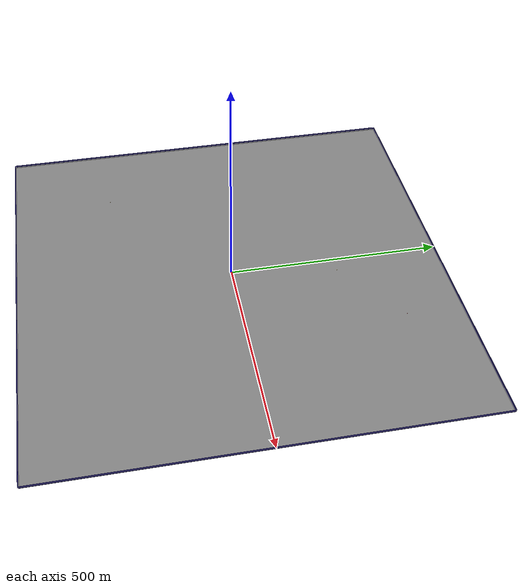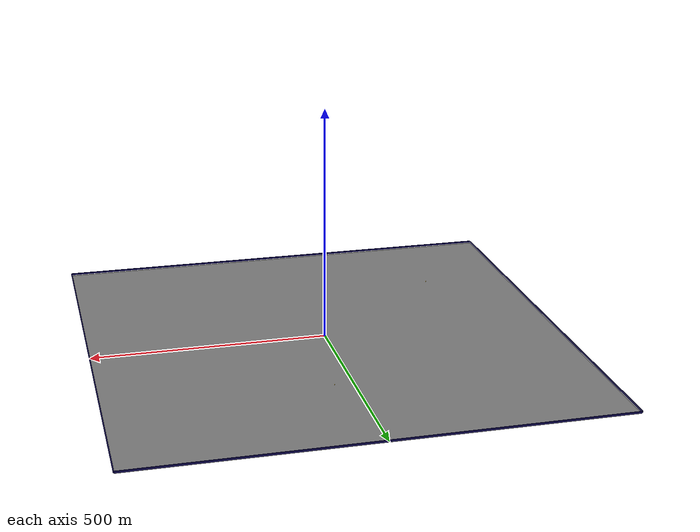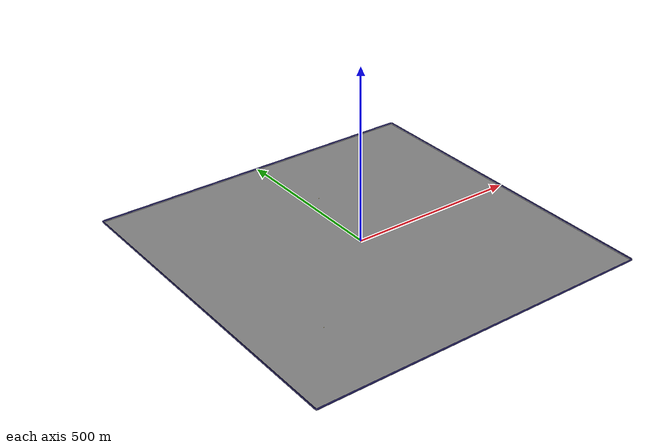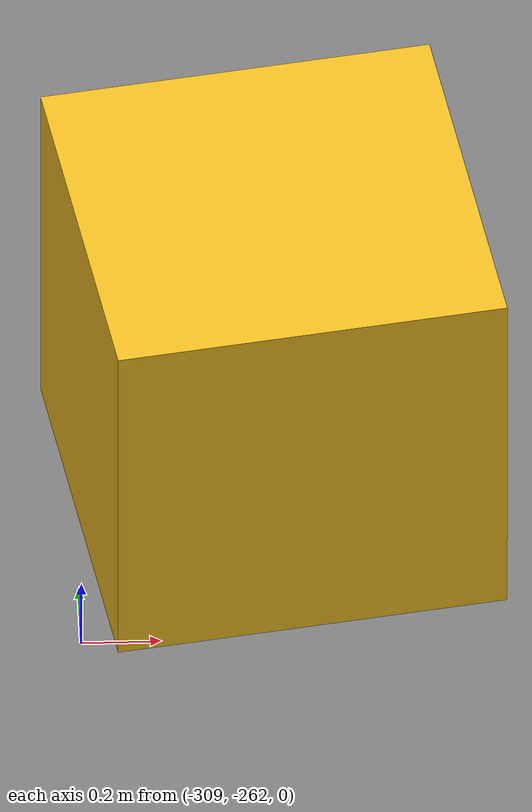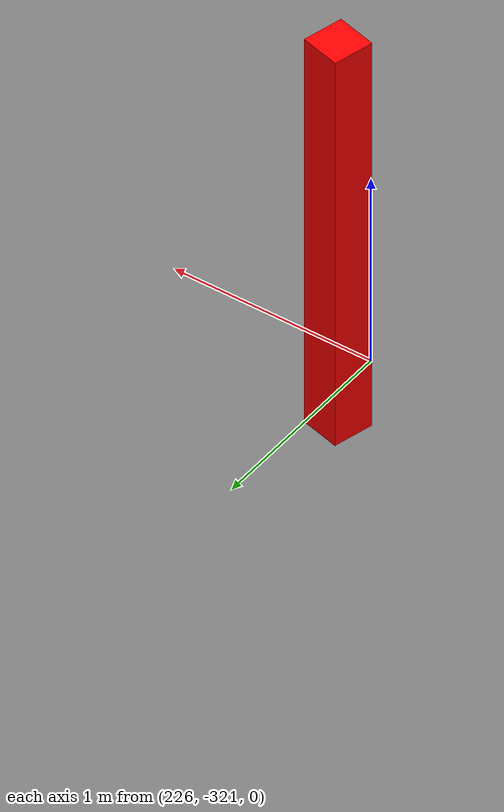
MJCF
<mujoco model="unnamed_model">
  <default>
    <default class="/" />
    <default class="border/" />
    <default class="border_1/" />
    <default class="border_2/" />
    <default class="border_3/" />
    <default class="agentplaceholder/" />
    <default class="placeholder_box/" />
    <default class="stone0/" />
    <default class="stone1/" />
    <default class="tree/" />
    <default class="tree_1/" />
  </default>
  <worldbody>
    <body name="border/">
      <body name="border/border" pos="0 501 2">
        <geom name="border/border_geom" class="border/" type="box" size="500 1 2" rgba="0.035000000000000003 0.016 0.28999999999999998 1" />
      </body>
    </body>
    <body name="border_1/">
      <body name="border_1/border" pos="0 -501 2">
        <geom name="border_1/border_geom" class="border_1/" type="box" size="500 1 2" rgba="0.035000000000000003 0.016 0.28999999999999998 1" />
      </body>
    </body>
    <body name="border_2/">
      <body name="border_2/border" pos="501 0 2">
        <geom name="border_2/border_geom" class="border_2/" type="box" size="1 500 2" rgba="0.035000000000000003 0.016 0.28999999999999998 1" />
      </body>
    </body>
    <body name="border_3/">
      <body name="border_3/border" pos="-501 0 2">
        <geom name="border_3/border_geom" class="border_3/" type="box" size="1 500 2" rgba="0.035000000000000003 0.016 0.28999999999999998 1" />
      </body>
    </body>
    <body euler="0 0 -99.114141139328979" name="agentplaceholder/">
      <joint name="agentplaceholder/boxagent_freeJoint/" class="/" type="free" />
      <body name="agentplaceholder/agentplaceholder" pos="-250 0 3" euler="0 0 0">
        <geom name="agentplaceholder/boxagent_geom" class="agentplaceholder/" type="box" size="0.5 0.5 0.5" rgba="0.94899999999999995 0.74509999999999998 0.1333 1" euler="0 0 0" />
      </body>
    </body>
    <body name="placeholder_box/">
      <body name="placeholder_box/placeholder_box" pos="-308.49549999999999 -261.46460000000002 0.5" euler="0 0 -170.75342665813449">
        <geom name="placeholder_box/box_geom" class="placeholder_box/" type="box" size="0.5 0.5 0.5" rgba="0.94899999999999995 0.74509999999999998 0.1333 1" euler="0 0 0" />
      </body>
    </body>
    <body name="stone0/">
      <body name="stone0/stone0" pos="199.47219999999999 152.10320000000002 0.10000000000000001" euler="0 0 -104.00796001801768">
        <geom name="stone0/stone_geom" class="stone0/" type="box" size="0.10000000000000001 0.10000000000000001 2" rgba="1 0 0 1" />
      </body>
    </body>
    <body name="stone1/">
      <body name="stone1/stone1" pos="199.89544999999998 369.14429999999993 0.10000000000000001" euler="0 0 -150.2917756079982">
        <geom name="stone1/stone_geom" class="stone1/" type="box" size="0.10000000000000001 0.10000000000000001 2" rgba="1 0 0 1" />
      </body>
    </body>
    <body name="tree/">
      <body name="tree/tree" pos="353.47405000000003 234.39769999999999 0.10000000000000001" euler="0 0 -105.34042928462982">
        <geom name="tree/tree_geom" class="tree/" type="box" size="0.10000000000000001 0.10000000000000001 2" rgba="1 0 0 1" />
      </body>
    </body>
    <body name="tree_1/">
      <body name="tree_1/tree" pos="225.88464999999999 -320.6003 0.10000000000000001" euler="0 0 165.33598373180581">
        <geom name="tree_1/tree_geom" class="tree_1/" type="box" size="0.10000000000000001 0.10000000000000001 2" rgba="1 0 0 1" />
      </body>
    </body>
    <geom name="base_plane" class="/" type="plane" size="500 500 0.10000000000000001" />
  </worldbody>
</mujoco>
